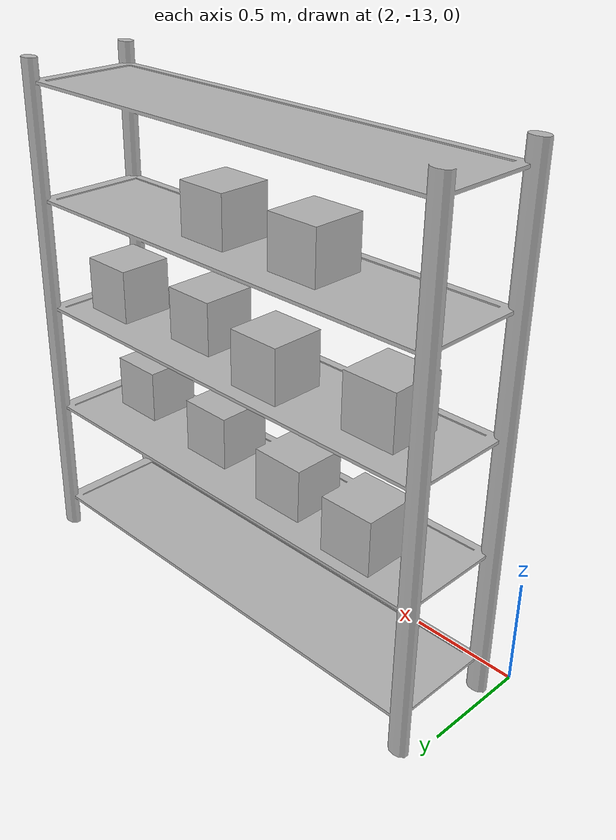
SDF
<?xml version="1.0" ?>
<sdf version="1.9">
  <model name="shelf">
    <static>true</static>
    <link name="link">
      <pose>3 -12.3 0 1.57 0 0</pose> #   0 -6 0 1.57 0 1.59

      <visual name="visual">
        <geometry>
          <mesh>
            <uri>file://shelf/meshes/prateleira1cbr.obj</uri>
            <scale>0.03 0.03 0.03</scale>
          </mesh>
        </geometry>
      </visual>
    </link>
  </model>
</sdf>
